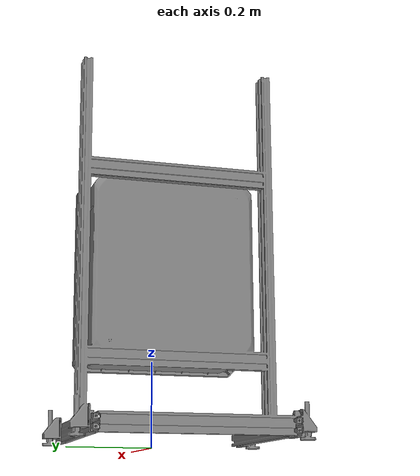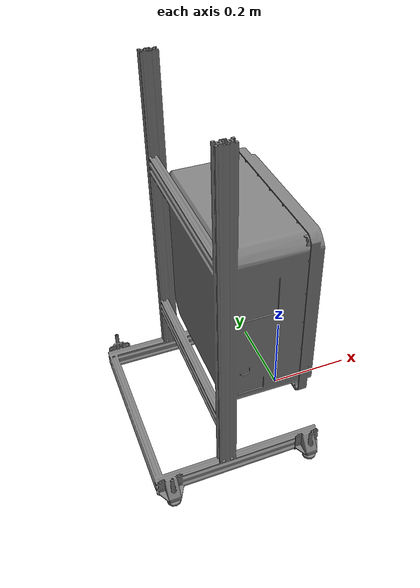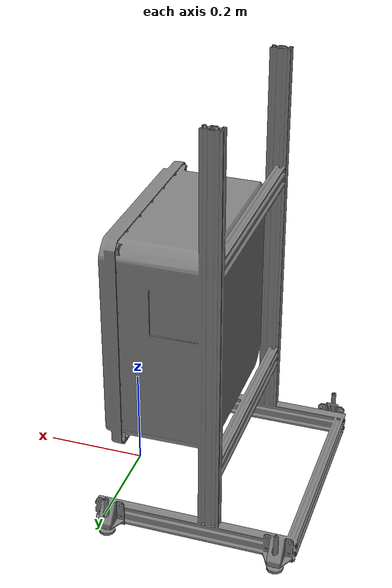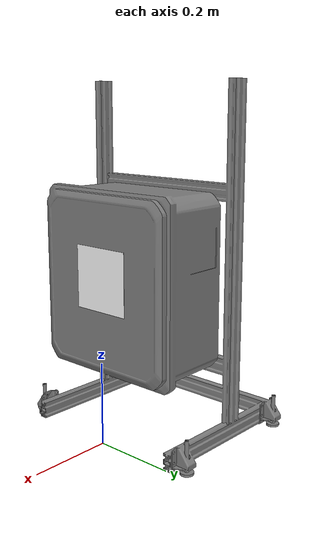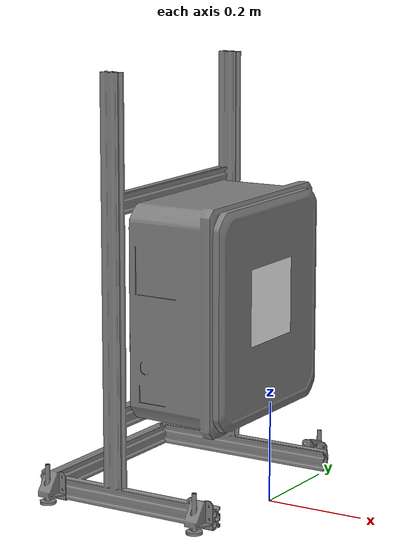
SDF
<?xml version="1.0"?>

<sdf version="1.6">
  <model name="WiboticStation">
    <link name="wibotic_station_base">
      <visual name="visual">
        <pose>0 0 0 0 0 1.5708</pose>
        <geometry>
          <mesh>
            <uri>model://WiboticStation/meshes/wibotic_station.stl</uri>
          </mesh>
        </geometry>
        <material>
          <ambient>0.5 0.5 0.5 1</ambient>
          <diffuse>0.5 0.5 0.5 1</diffuse>
          <specular>0.5 0.5 0.5 1</specular>
          <emissive>0.1 0.1 0.1 1</emissive>
        </material>
      </visual>

      <collision name="collision">
        <pose>-0.2 0.0 0.4 0 0 0</pose>
        <geometry>
          <box>
            <size>0.4 0.5 0.8</size>
          </box>
        </geometry>
      </collision>

      <inertial>
        <mass>15.0</mass>
        <pose>-0.2 0 0 0 0 0</pose>
        <inertia>
          <ixx>0.001111</ixx>
          <iyy>0.001111</iyy>
          <izz>0.001111</izz>
        </inertia>
      </inertial>
    </link>

    <joint name="wibotic_station_base_to_apriltag_joint" type="fixed">
      <parent>wibotic_station_base</parent>
      <child>apriltag_link</child>
    </joint>

    <!-- Apriltag creation -->
    <link name="apriltag_link">
      <pose>0 0 0.4 0 0 1.5708</pose>
      <visual name="apriltag_visual">
        <geometry>
          <box>
            <size>0.15 0.001 0.15</size>
          </box>
        </geometry>
        <material>
          <ambient>1.0 1.0 1.0 1</ambient>
          <diffuse>1.0 1.0 1.0 1</diffuse>
          <specular>0.5 0.5 0.5 1</specular>
          <pbr>
            <metal>
              <metalness>0.0</metalness>
              <albedo_map>file://WiboticStation/meshes/tag_201.png</albedo_map>
            </metal>
          </pbr>
        </material>
      </visual>

      <collision name="apriltag_collision">
        <pose>0 0 0 0 1.5708 0</pose>
        <geometry>
          <box>
            <size>0.15 0.15 0.0001</size>
          </box>
        </geometry>
      </collision>

      <inertial>
        <mass>1e-5</mass>
        <inertia>
          <ixx>1e-6</ixx>
          <iyy>1e-6</iyy>
          <izz>1e-6</izz>
        </inertia>
      </inertial>
    </link>

  </model>
</sdf>
